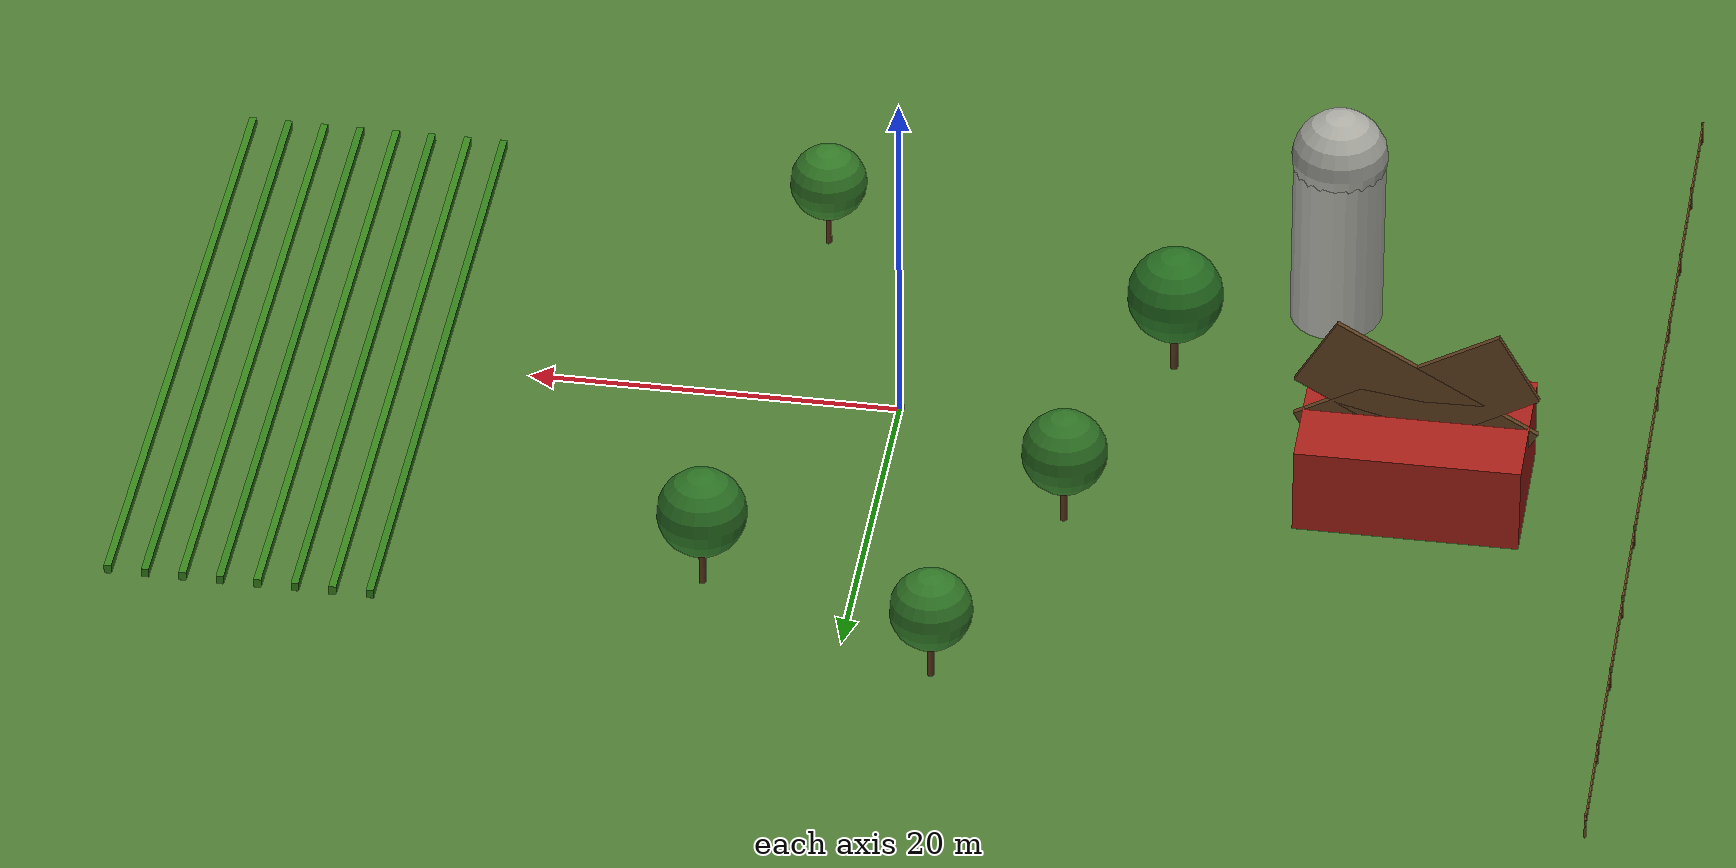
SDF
<?xml version="1.0" ?>
<sdf version="1.8">
  <world name="fusioncore_outdoor">

    <physics name="1ms" type="ignored">
      <max_step_size>0.001</max_step_size>
      <real_time_factor>1.0</real_time_factor>
    </physics>

    <plugin filename="gz-sim-physics-system"        name="gz::sim::systems::Physics"/>
    <plugin filename="gz-sim-user-commands-system"  name="gz::sim::systems::UserCommands"/>
    <plugin filename="gz-sim-scene-broadcaster-system" name="gz::sim::systems::SceneBroadcaster"/>
    <plugin filename="gz-sim-sensors-system"        name="gz::sim::systems::Sensors">
      <render_engine>ogre2</render_engine>
    </plugin>
    <plugin filename="gz-sim-imu-system"            name="gz::sim::systems::Imu"/>

    <!-- GPS origin: Hamilton, Ontario -->
    <spherical_coordinates>
      <surface_model>EARTH_WGS84</surface_model>
      <latitude_deg>43.2557</latitude_deg>
      <longitude_deg>-79.8711</longitude_deg>
      <elevation>100.0</elevation>
      <heading_deg>0</heading_deg>
    </spherical_coordinates>

    <!-- Morning sun from ESE, long shadows -->
    <light name="sun" type="directional">
      <cast_shadows>true</cast_shadows>
      <pose>0 0 50 0 0 0</pose>
      <diffuse>0.95 0.92 0.82 1</diffuse>
      <specular>0.3 0.3 0.2 1</specular>
      <direction>-0.6 0.3 -0.75</direction>
      <attenuation><range>1000</range><linear>0.01</linear></attenuation>
    </light>

    <!-- Ambient fill to avoid pure black shadows -->
    <light name="ambient_fill" type="directional">
      <cast_shadows>false</cast_shadows>
      <diffuse>0.35 0.40 0.45 1</diffuse>
      <specular>0 0 0 1</specular>
      <direction>0.3 -0.3 -0.9</direction>
    </light>

    <!-- ── Ground ─────────────────────────────────────────────────── -->
    <model name="ground_plane">
      <static>true</static>
      <link name="link">
        <collision name="col">
          <geometry><plane><normal>0 0 1</normal><size>300 300</size></plane></geometry>
        </collision>
        <visual name="vis">
          <geometry><plane><normal>0 0 1</normal><size>300 300</size></plane></geometry>
          <material>
            <ambient>0.28 0.42 0.18 1</ambient>
            <diffuse>0.30 0.48 0.20 1</diffuse>
          </material>
        </visual>
      </link>
    </model>

    <!-- ── Barn ───────────────────────────────────────────────────── -->
    <!-- Main barn body -->
    <model name="barn_body">
      <static>true</static>
      <pose>-28 3 2.5 0 0 0</pose>
      <link name="link">
        <collision name="col"><geometry><box><size>12 8 5</size></box></geometry></collision>
        <visual name="vis">
          <geometry><box><size>12 8 5</size></box></geometry>
          <material><ambient>0.62 0.10 0.08 1</ambient><diffuse>0.65 0.12 0.09 1</diffuse></material>
        </visual>
      </link>
    </model>

    <!-- Barn roof (ridge beam approx as tilted box) -->
    <model name="barn_roof_left">
      <static>true</static>
      <pose>-28 3 5.8 0 -0.52 0</pose>
      <link name="link">
        <visual name="vis">
          <geometry><box><size>12.4 0.3 4.5</size></box></geometry>
          <material><ambient>0.35 0.22 0.10 1</ambient><diffuse>0.38 0.25 0.12 1</diffuse></material>
        </visual>
      </link>
    </model>
    <model name="barn_roof_right">
      <static>true</static>
      <pose>-28 3 5.8 0 0.52 0</pose>
      <link name="link">
        <visual name="vis">
          <geometry><box><size>12.4 0.3 4.5</size></box></geometry>
          <material><ambient>0.35 0.22 0.10 1</ambient><diffuse>0.38 0.25 0.12 1</diffuse></material>
        </visual>
      </link>
    </model>

    <!-- ── Silo ───────────────────────────────────────────────────── -->
    <model name="silo">
      <static>true</static>
      <pose>-22 -12 5 0 0 0</pose>
      <link name="link">
        <collision name="col"><geometry><cylinder><radius>2.5</radius><length>10</length></cylinder></geometry></collision>
        <visual name="vis">
          <geometry><cylinder><radius>2.5</radius><length>10</length></cylinder></geometry>
          <material><ambient>0.72 0.72 0.70 1</ambient><diffuse>0.75 0.75 0.72 1</diffuse></material>
        </visual>
      </link>
    </model>
    <!-- Silo dome top -->
    <model name="silo_dome">
      <static>true</static>
      <pose>-22 -12 10.5 0 0 0</pose>
      <link name="link">
        <visual name="vis">
          <geometry><sphere><radius>2.6</radius></sphere></geometry>
          <material><ambient>0.65 0.65 0.62 1</ambient><diffuse>0.68 0.68 0.65 1</diffuse></material>
        </visual>
      </link>
    </model>

    <!-- ── Trees ──────────────────────────────────────────────────── -->
    <model name="tree_1_trunk">
      <static>true</static><pose>-10 8 1.5 0 0 0</pose>
      <link name="link"><visual name="vis">
        <geometry><cylinder><radius>0.18</radius><length>3.0</length></cylinder></geometry>
        <material><ambient>0.35 0.22 0.10 1</ambient></material>
      </visual></link>
    </model>
    <model name="tree_1_canopy">
      <static>true</static><pose>-10 8 4.5 0 0 0</pose>
      <link name="link"><visual name="vis">
        <geometry><sphere><radius>2.3</radius></sphere></geometry>
        <material><ambient>0.15 0.42 0.12 1</ambient><diffuse>0.18 0.45 0.14 1</diffuse></material>
      </visual></link>
    </model>

    <model name="tree_2_trunk">
      <static>true</static><pose>-14 -6 1.5 0 0 0</pose>
      <link name="link"><visual name="vis">
        <geometry><cylinder><radius>0.20</radius><length>3.2</length></cylinder></geometry>
        <material><ambient>0.35 0.22 0.10 1</ambient></material>
      </visual></link>
    </model>
    <model name="tree_2_canopy">
      <static>true</static><pose>-14 -6 4.8 0 0 0</pose>
      <link name="link"><visual name="vis">
        <geometry><sphere><radius>2.6</radius></sphere></geometry>
        <material><ambient>0.12 0.40 0.10 1</ambient><diffuse>0.15 0.44 0.13 1</diffuse></material>
      </visual></link>
    </model>

    <model name="tree_3_trunk">
      <static>true</static><pose>6 -14 1.5 0 0 0</pose>
      <link name="link"><visual name="vis">
        <geometry><cylinder><radius>0.16</radius><length>2.8</length></cylinder></geometry>
        <material><ambient>0.35 0.22 0.10 1</ambient></material>
      </visual></link>
    </model>
    <model name="tree_3_canopy">
      <static>true</static><pose>6 -14 4.2 0 0 0</pose>
      <link name="link"><visual name="vis">
        <geometry><sphere><radius>2.1</radius></sphere></geometry>
        <material><ambient>0.17 0.44 0.13 1</ambient><diffuse>0.20 0.48 0.15 1</diffuse></material>
      </visual></link>
    </model>

    <model name="tree_4_trunk">
      <static>true</static><pose>8 16 1.5 0 0 0</pose>
      <link name="link"><visual name="vis">
        <geometry><cylinder><radius>0.19</radius><length>3.1</length></cylinder></geometry>
        <material><ambient>0.35 0.22 0.10 1</ambient></material>
      </visual></link>
    </model>
    <model name="tree_4_canopy">
      <static>true</static><pose>8 16 4.6 0 0 0</pose>
      <link name="link"><visual name="vis">
        <geometry><sphere><radius>2.4</radius></sphere></geometry>
        <material><ambient>0.14 0.41 0.11 1</ambient><diffuse>0.17 0.45 0.14 1</diffuse></material>
      </visual></link>
    </model>

    <model name="tree_5_trunk">
      <static>true</static><pose>-5 22 1.5 0 0 0</pose>
      <link name="link"><visual name="vis">
        <geometry><cylinder><radius>0.17</radius><length>2.9</length></cylinder></geometry>
        <material><ambient>0.35 0.22 0.10 1</ambient></material>
      </visual></link>
    </model>
    <model name="tree_5_canopy">
      <static>true</static><pose>-5 22 4.4 0 0 0</pose>
      <link name="link"><visual name="vis">
        <geometry><sphere><radius>2.2</radius></sphere></geometry>
        <material><ambient>0.16 0.43 0.12 1</ambient><diffuse>0.19 0.47 0.15 1</diffuse></material>
      </visual></link>
    </model>

    <!-- ── Crop rows (x=25..39, 8 rows, 2m spacing) ───────────────── -->
    <model name="crop_row_1"><static>true</static><pose>25 0 0.25 0 0 0</pose>
      <link name="link"><visual name="vis"><geometry><box><size>0.4 40 0.5</size></box></geometry>
        <material><ambient>0.20 0.50 0.10 1</ambient></material></visual></link></model>
    <model name="crop_row_2"><static>true</static><pose>27 0 0.25 0 0 0</pose>
      <link name="link"><visual name="vis"><geometry><box><size>0.4 40 0.5</size></box></geometry>
        <material><ambient>0.22 0.52 0.11 1</ambient></material></visual></link></model>
    <model name="crop_row_3"><static>true</static><pose>29 0 0.25 0 0 0</pose>
      <link name="link"><visual name="vis"><geometry><box><size>0.4 40 0.5</size></box></geometry>
        <material><ambient>0.20 0.50 0.10 1</ambient></material></visual></link></model>
    <model name="crop_row_4"><static>true</static><pose>31 0 0.25 0 0 0</pose>
      <link name="link"><visual name="vis"><geometry><box><size>0.4 40 0.5</size></box></geometry>
        <material><ambient>0.22 0.52 0.11 1</ambient></material></visual></link></model>
    <model name="crop_row_5"><static>true</static><pose>33 0 0.25 0 0 0</pose>
      <link name="link"><visual name="vis"><geometry><box><size>0.4 40 0.5</size></box></geometry>
        <material><ambient>0.20 0.50 0.10 1</ambient></material></visual></link></model>
    <model name="crop_row_6"><static>true</static><pose>35 0 0.25 0 0 0</pose>
      <link name="link"><visual name="vis"><geometry><box><size>0.4 40 0.5</size></box></geometry>
        <material><ambient>0.22 0.52 0.11 1</ambient></material></visual></link></model>
    <model name="crop_row_7"><static>true</static><pose>37 0 0.25 0 0 0</pose>
      <link name="link"><visual name="vis"><geometry><box><size>0.4 40 0.5</size></box></geometry>
        <material><ambient>0.20 0.50 0.10 1</ambient></material></visual></link></model>
    <model name="crop_row_8"><static>true</static><pose>39 0 0.25 0 0 0</pose>
      <link name="link"><visual name="vis"><geometry><box><size>0.4 40 0.5</size></box></geometry>
        <material><ambient>0.22 0.52 0.11 1</ambient></material></visual></link></model>

    <!-- ── Fence posts along x=-40 ────────────────────────────────── -->
    <model name="fence_post_1"><static>true</static><pose>-40 -30 0.75 0 0 0</pose>
      <link name="link"><visual name="vis"><geometry><box><size>0.12 0.12 1.5</size></box></geometry>
        <material><ambient>0.42 0.28 0.12 1</ambient></material></visual></link></model>
    <model name="fence_post_2"><static>true</static><pose>-40 -24 0.75 0 0 0</pose>
      <link name="link"><visual name="vis"><geometry><box><size>0.12 0.12 1.5</size></box></geometry>
        <material><ambient>0.42 0.28 0.12 1</ambient></material></visual></link></model>
    <model name="fence_post_3"><static>true</static><pose>-40 -18 0.75 0 0 0</pose>
      <link name="link"><visual name="vis"><geometry><box><size>0.12 0.12 1.5</size></box></geometry>
        <material><ambient>0.42 0.28 0.12 1</ambient></material></visual></link></model>
    <model name="fence_post_4"><static>true</static><pose>-40 -12 0.75 0 0 0</pose>
      <link name="link"><visual name="vis"><geometry><box><size>0.12 0.12 1.5</size></box></geometry>
        <material><ambient>0.42 0.28 0.12 1</ambient></material></visual></link></model>
    <model name="fence_post_5"><static>true</static><pose>-40 -6 0.75 0 0 0</pose>
      <link name="link"><visual name="vis"><geometry><box><size>0.12 0.12 1.5</size></box></geometry>
        <material><ambient>0.42 0.28 0.12 1</ambient></material></visual></link></model>
    <model name="fence_post_6"><static>true</static><pose>-40 0 0.75 0 0 0</pose>
      <link name="link"><visual name="vis"><geometry><box><size>0.12 0.12 1.5</size></box></geometry>
        <material><ambient>0.42 0.28 0.12 1</ambient></material></visual></link></model>
    <model name="fence_post_7"><static>true</static><pose>-40 6 0.75 0 0 0</pose>
      <link name="link"><visual name="vis"><geometry><box><size>0.12 0.12 1.5</size></box></geometry>
        <material><ambient>0.42 0.28 0.12 1</ambient></material></visual></link></model>
    <model name="fence_post_8"><static>true</static><pose>-40 12 0.75 0 0 0</pose>
      <link name="link"><visual name="vis"><geometry><box><size>0.12 0.12 1.5</size></box></geometry>
        <material><ambient>0.42 0.28 0.12 1</ambient></material></visual></link></model>
    <model name="fence_post_9"><static>true</static><pose>-40 18 0.75 0 0 0</pose>
      <link name="link"><visual name="vis"><geometry><box><size>0.12 0.12 1.5</size></box></geometry>
        <material><ambient>0.42 0.28 0.12 1</ambient></material></visual></link></model>
    <model name="fence_post_10"><static>true</static><pose>-40 24 0.75 0 0 0</pose>
      <link name="link"><visual name="vis"><geometry><box><size>0.12 0.12 1.5</size></box></geometry>
        <material><ambient>0.42 0.28 0.12 1</ambient></material></visual></link></model>
    <model name="fence_post_11"><static>true</static><pose>-40 30 0.75 0 0 0</pose>
      <link name="link"><visual name="vis"><geometry><box><size>0.12 0.12 1.5</size></box></geometry>
        <material><ambient>0.42 0.28 0.12 1</ambient></material></visual></link></model>

    <!-- Fence rails (horizontal, connecting posts) -->
    <model name="fence_rail_top"><static>true</static><pose>-40 0 1.3 0 0 0</pose>
      <link name="link"><visual name="vis"><geometry><box><size>0.08 60.5 0.08</size></box></geometry>
        <material><ambient>0.42 0.28 0.12 1</ambient></material></visual></link></model>
    <model name="fence_rail_mid"><static>true</static><pose>-40 0 0.8 0 0 0</pose>
      <link name="link"><visual name="vis"><geometry><box><size>0.08 60.5 0.08</size></box></geometry>
        <material><ambient>0.42 0.28 0.12 1</ambient></material></visual></link></model>

    <!-- ── Robot ──────────────────────────────────────────────────── -->
    <include>
      <uri>model://fusioncore_robot</uri>
      <pose>0 0 0.15 0 0 0</pose>
    </include>

  </world>
</sdf>

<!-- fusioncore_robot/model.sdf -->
<sdf version="1.8">
  <model name="fusioncore_robot">
    <pose>0 0 0.15 0 0 0</pose>

    <!-- Base link -->
    <link name="base_link">
      <inertial>
        <mass>10.0</mass>
        <inertia>
          <ixx>0.3</ixx><ixy>0</ixy><ixz>0</ixz>
          <iyy>0.3</iyy><iyz>0</iyz>
          <izz>0.4</izz>
        </inertia>
      </inertial>
      <collision name="base_collision">
        <geometry>
          <box><size>0.5 0.4 0.2</size></box>
        </geometry>
      </collision>
      <visual name="base_visual">
        <geometry>
          <box><size>0.5 0.4 0.2</size></box>
        </geometry>
        <material>
          <ambient>0.10 0.35 0.08 1</ambient>
          <diffuse>0.12 0.38 0.09 1</diffuse>
        </material>
      </visual>
      <!-- Yellow accent stripe -->
      <visual name="stripe_visual">
        <pose>0.18 0 0.11 0 0 0</pose>
        <geometry><box><size>0.15 0.42 0.01</size></box></geometry>
        <material><ambient>0.95 0.82 0.0 1</ambient><diffuse>0.95 0.82 0.0 1</diffuse></material>
      </visual>
      <!-- GPS antenna stub -->
      <visual name="gps_antenna_visual">
        <pose>-0.12 0 0.12 0 0 0</pose>
        <geometry><cylinder><radius>0.025</radius><length>0.06</length></cylinder></geometry>
        <material><ambient>0.85 0.85 0.85 1</ambient></material>
      </visual>
    </link>

    <!-- Left wheel -->
    <link name="left_wheel">
      <pose>0 0.22 0 -1.5707 0 0</pose>
      <inertial>
        <mass>1.0</mass>
        <inertia>
          <ixx>0.01</ixx><ixy>0</ixy><ixz>0</ixz>
          <iyy>0.01</iyy><iyz>0</iyz>
          <izz>0.02</izz>
        </inertia>
      </inertial>
      <collision name="left_wheel_collision">
        <geometry><cylinder><radius>0.15</radius><length>0.05</length></cylinder></geometry>
        <surface><friction><ode><mu>1.0</mu><mu2>1.0</mu2></ode></friction></surface>
      </collision>
      <visual name="left_wheel_visual">
        <geometry><cylinder><radius>0.15</radius><length>0.05</length></cylinder></geometry>
        <material><ambient>0.1 0.1 0.1 1</ambient></material>
      </visual>
    </link>

    <!-- Right wheel -->
    <link name="right_wheel">
      <pose>0 -0.22 0 -1.5707 0 0</pose>
      <inertial>
        <mass>1.0</mass>
        <inertia>
          <ixx>0.01</ixx><ixy>0</ixy><ixz>0</ixz>
          <iyy>0.01</iyy><iyz>0</iyz>
          <izz>0.02</izz>
        </inertia>
      </inertial>
      <collision name="right_wheel_collision">
        <geometry><cylinder><radius>0.15</radius><length>0.05</length></cylinder></geometry>
        <surface><friction><ode><mu>1.0</mu><mu2>1.0</mu2></ode></friction></surface>
      </collision>
      <visual name="right_wheel_visual">
        <geometry><cylinder><radius>0.15</radius><length>0.05</length></cylinder></geometry>
        <material><ambient>0.1 0.1 0.1 1</ambient></material>
      </visual>
    </link>

    <!-- Left wheel joint -->
    <joint name="left_wheel_joint" type="revolute">
      <parent>base_link</parent>
      <child>left_wheel</child>
      <axis><xyz>0 0 1</xyz></axis>
    </joint>

    <!-- Right wheel joint -->
    <joint name="right_wheel_joint" type="revolute">
      <parent>base_link</parent>
      <child>right_wheel</child>
      <axis><xyz>0 0 1</xyz></axis>
    </joint>

    <!-- IMU sensor -->
    <link name="imu_link">
      <pose>0 0 0.1 0 0 0</pose>
      <inertial><mass>0.01</mass><inertia><ixx>1e-5</ixx><ixy>0</ixy><ixz>0</ixz><iyy>1e-5</iyy><iyz>0</iyz><izz>1e-5</izz></inertia></inertial>
      <sensor name="imu_sensor" type="imu">
        <always_on>true</always_on>
        <update_rate>100</update_rate>
        <imu>
          <angular_velocity>
            <x><noise type="gaussian"><mean>0</mean><stddev>0.003</stddev></noise></x>
            <y><noise type="gaussian"><mean>0</mean><stddev>0.003</stddev></noise></y>
            <z><noise type="gaussian"><mean>0</mean><stddev>0.003</stddev></noise></z>
          </angular_velocity>
          <linear_acceleration>
            <x><noise type="gaussian"><mean>0</mean><stddev>0.05</stddev></noise></x>
            <y><noise type="gaussian"><mean>0</mean><stddev>0.05</stddev></noise></y>
            <z><noise type="gaussian"><mean>0</mean><stddev>0.05</stddev></noise></z>
          </linear_acceleration>
        </imu>
        <topic>/imu/data</topic>
      </sensor>
    </link>

    <joint name="imu_joint" type="fixed">
      <parent>base_link</parent>
      <child>imu_link</child>
    </joint>

    <!-- GPS: use odometry ground truth converted to NavSat in launch file -->
    <!-- NavSat sensor avoided due to gz-sim #2163 bug corrupting coordinates -->

    <!-- Differential drive plugin -->
    <plugin filename="gz-sim-diff-drive-system"
            name="gz::sim::systems::DiffDrive">
      <left_joint>left_wheel_joint</left_joint>
      <right_joint>right_wheel_joint</right_joint>
      <wheel_separation>0.44</wheel_separation>
      <wheel_radius>0.15</wheel_radius>
      <odom_publish_frequency>50</odom_publish_frequency>
      <topic>/cmd_vel</topic>
      <odom_topic>/odom/wheels</odom_topic>
      <frame_id>odom</frame_id>
      <child_frame_id>base_link</child_frame_id>
    </plugin>

  </model>
</sdf>
